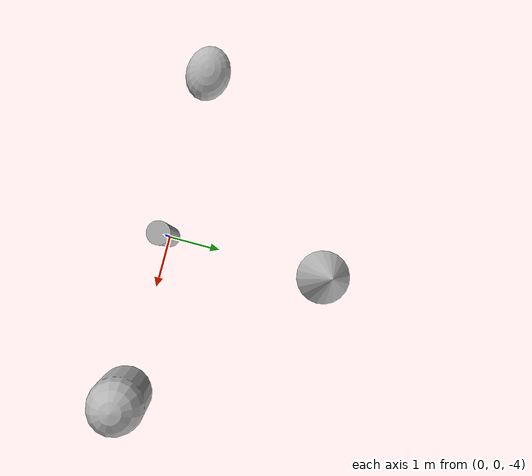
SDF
<?xml version="1.0" ?>
<sdf version="1.6">
  <world name="buoyancy">

    <physics name="1ms" type="ode">
      <max_step_size>0.001</max_step_size>
      <real_time_factor>0</real_time_factor>
    </physics>
    <plugin
      filename="gz-sim-physics-system"
      name="gz::sim::systems::Physics">
    </plugin>
    <plugin
      filename="gz-sim-buoyancy-system"
      name="gz::sim::systems::Buoyancy">
      <graded_buoyancy>
        <default_density>1000</default_density>
        <density_change>
          <above_depth>0</above_depth>
          <density>1</density>
        </density_change>
      </graded_buoyancy>
    </plugin>

    <!-- Cylinder: radius=0.2, length=2.0
         Volume = pi*r^2*l = pi*0.04*2 = 0.25133 m^3
         mass = 1000 * 0.25133 = 251.33 kg -->
    <model name='cylinder_neutral'>
      <pose>0 0 -3 0 0 0</pose>
      <link name='body'>
        <inertial>
          <mass>251.33</mass>
          <inertia>
            <ixx>86.29</ixx>
            <ixy>0</ixy>
            <ixz>0</ixz>
            <iyy>86.29</iyy>
            <iyz>0</iyz>
            <izz>5.03</izz>
          </inertia>
        </inertial>
        <collision name='body_collision'>
          <geometry>
            <cylinder>
              <radius>0.2</radius>
              <length>2.0</length>
            </cylinder>
          </geometry>
        </collision>
        <visual name='body_visual'>
          <geometry>
            <cylinder>
              <radius>0.2</radius>
              <length>2.0</length>
            </cylinder>
          </geometry>
        </visual>
      </link>
    </model>

    <!-- Capsule: radius=0.5, length=1.0
         Volume = pi*r^2*l + (4/3)*pi*r^3 = 1.30900 m^3
         mass = 1000 * 1.30900 = 1309.00 kg -->
    <model name='capsule_neutral'>
      <pose>3 0 -3 0 0 0</pose>
      <link name='body'>
        <inertial>
          <mass>1309.00</mass>
          <inertia>
            <ixx>200</ixx>
            <ixy>0</ixy>
            <ixz>0</ixz>
            <iyy>200</iyy>
            <iyz>0</iyz>
            <izz>200</izz>
          </inertia>
        </inertial>
        <collision name='body_collision'>
          <geometry>
            <capsule>
              <radius>0.5</radius>
              <length>1.0</length>
            </capsule>
          </geometry>
        </collision>
        <visual name='body_visual'>
          <geometry>
            <capsule>
              <radius>0.5</radius>
              <length>1.0</length>
            </capsule>
          </geometry>
        </visual>
      </link>
    </model>

    <!-- Ellipsoid: radii=(0.5, 0.4, 0.3)
         Volume = (4/3)*pi*0.5*0.4*0.3 = 0.25133 m^3
         mass = 1000 * 0.25133 = 251.33 kg -->
    <model name='ellipsoid_neutral'>
      <pose>-3 0 -3 0 0 0</pose>
      <link name='body'>
        <inertial>
          <mass>251.33</mass>
          <inertia>
            <ixx>50</ixx>
            <ixy>0</ixy>
            <ixz>0</ixz>
            <iyy>50</iyy>
            <iyz>0</iyz>
            <izz>50</izz>
          </inertia>
        </inertial>
        <collision name='body_collision'>
          <geometry>
            <ellipsoid>
              <radii>0.5 0.4 0.3</radii>
            </ellipsoid>
          </geometry>
        </collision>
        <visual name='body_visual'>
          <geometry>
            <ellipsoid>
              <radii>0.5 0.4 0.3</radii>
            </ellipsoid>
          </geometry>
        </visual>
      </link>
    </model>

    <!-- Cone: radius=0.5, length=1.0
         Volume = (1/3)*pi*r^2*h = 0.26180 m^3
         mass = 1000 * 0.26180 = 261.80 kg -->
    <model name='cone_neutral'>
      <pose>0 3 -3 0 0 0</pose>
      <link name='body'>
        <inertial>
          <mass>261.80</mass>
          <inertia>
            <ixx>50</ixx>
            <ixy>0</ixy>
            <ixz>0</ixz>
            <iyy>50</iyy>
            <iyz>0</iyz>
            <izz>50</izz>
          </inertia>
        </inertial>
        <collision name='body_collision'>
          <geometry>
            <cone>
              <radius>0.5</radius>
              <length>1.0</length>
            </cone>
          </geometry>
        </collision>
        <visual name='body_visual'>
          <geometry>
            <cone>
              <radius>0.5</radius>
              <length>1.0</length>
            </cone>
          </geometry>
        </visual>
      </link>
    </model>

  </world>
</sdf>
